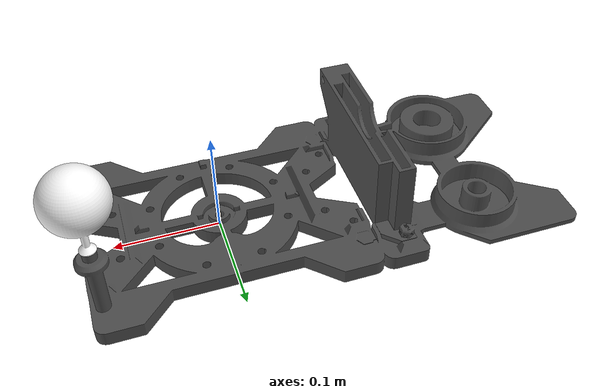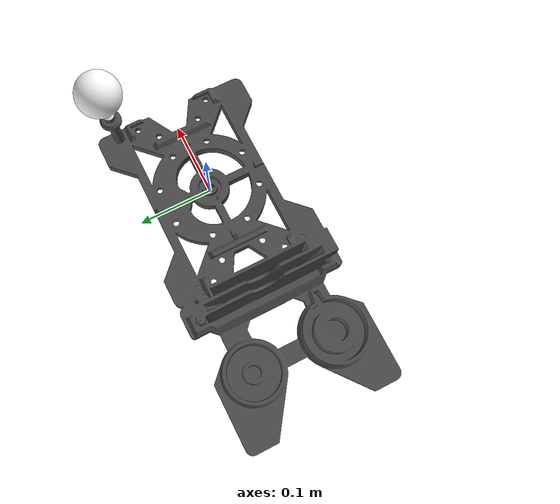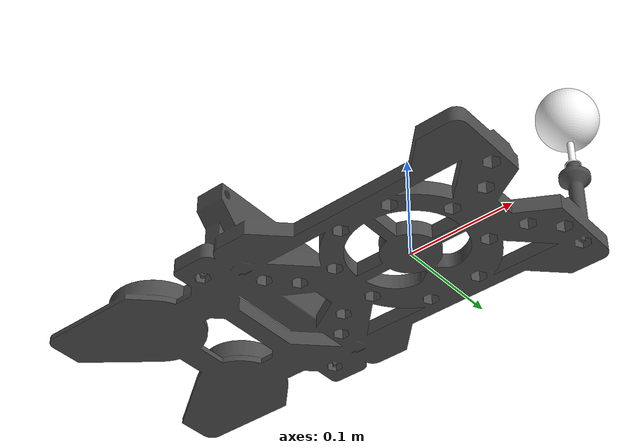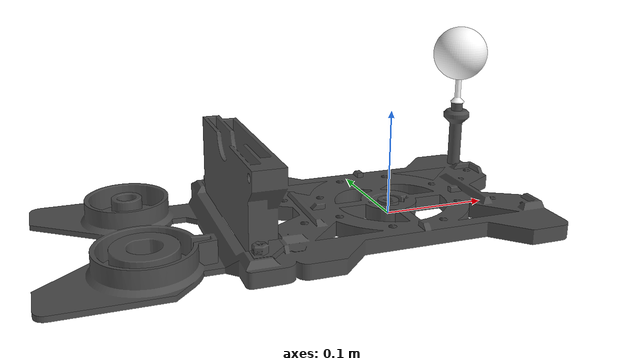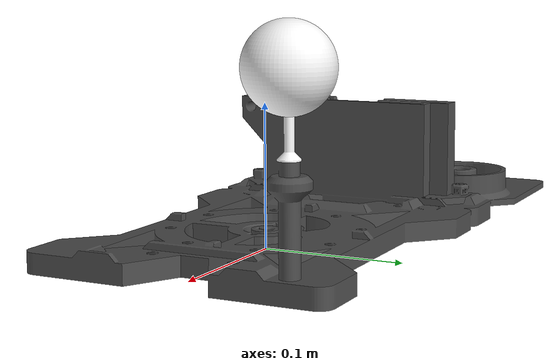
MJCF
<mujoco model="G2_Sphere">

  <asset>
    <material name="object_material" rgba="1 1 1 1" shininess="0.3"/>

    <mesh name="g9101112_base_plate_visual" file="g9101112_base_plate_visual.stl" scale="1 1 1"/>
    <mesh name="g_plate_collision_part1" file="g_plate_collision_part1.stl" scale="1 1 1"/>
    <mesh name="g_plate_collision_part2" file="g_plate_collision_part2.stl" scale="1 1 1"/>
    <mesh name="g_plate_collision_part3" file="g_plate_collision_part3.stl" scale="1 1 1"/>
    <mesh name="g910_pick_holder_collision_part0" file="g910_pick_holder_collision/part_0.obj" scale="1 1 1"/>
    <mesh name="g910_pick_holder_collision_part1" file="g910_pick_holder_collision/part_1.obj" scale="1 1 1"/>
    <mesh name="g910_pick_holder_collision_part2" file="g910_pick_holder_collision/part_2.obj" scale="1 1 1"/>
    <mesh name="g910_pick_holder_collision_part3" file="g910_pick_holder_collision/part_3.obj" scale="1 1 1"/>
    <mesh name="g910_pick_holder_collision_part4" file="g910_pick_holder_collision/part_4.obj" scale="1 1 1"/>
    <mesh name="g910_pick_holder_collision_part5" file="g910_pick_holder_collision/part_5.obj" scale="1 1 1"/>
    <mesh name="g910_pick_holder_collision_part6" file="g910_pick_holder_collision/part_6.obj" scale="1 1 1"/>
    <mesh name="g910_pick_holder_collision_part7" file="g910_pick_holder_collision/part_7.obj" scale="1 1 1"/>
    <mesh name="g910_pick_holder_collision_part8" file="g910_pick_holder_collision/part_8.obj" scale="1 1 1"/>
    <mesh name="g910_pick_holder_collision_part9" file="g910_pick_holder_collision/part_9.obj" scale="1 1 1"/>
    <mesh name="g910_pick_holder_collision_part10" file="g910_pick_holder_collision/part_10.obj" scale="1 1 1"/>
    <mesh name="g910_pick_holder_collision_part11" file="g910_pick_holder_collision/part_11.obj" scale="1 1 1"/>
    <mesh name="g910_pick_holder_collision_part12" file="g910_pick_holder_collision/part_12.obj" scale="1 1 1"/>
    <mesh name="g910_pick_holder_collision_part13" file="g910_pick_holder_collision/part_13.obj" scale="1 1 1"/>
    <mesh name="g910_pick_holder_collision_part14" file="g910_pick_holder_collision/part_14.obj" scale="1 1 1"/>
    <mesh name="g910_pick_holder_collision_part15" file="g910_pick_holder_collision/part_15.obj" scale="1 1 1"/>
    <mesh name="g910_pick_holder_collision_part16" file="g910_pick_holder_collision/part_16.obj" scale="1 1 1"/>
    <mesh name="g910_pick_holder_collision_part17" file="g910_pick_holder_collision/part_17.obj" scale="1 1 1"/>
    <mesh name="g910_pick_holder_collision_part18" file="g910_pick_holder_collision/part_18.obj" scale="1 1 1"/>
    <mesh name="g910_pick_holder_collision_part19" file="g910_pick_holder_collision/part_19.obj" scale="1 1 1"/>
    <mesh name="g910_pick_holder_collision_part20" file="g910_pick_holder_collision/part_20.obj" scale="1 1 1"/>
    <mesh name="g910_pick_holder_collision_part21" file="g910_pick_holder_collision/part_21.obj" scale="1 1 1"/>
    <mesh name="g910_bracket_collision_part0" file="g910_bracket_collision/part_0.obj" scale="1 1 1"/>
    <mesh name="g910_bracket_collision_part1" file="g910_bracket_collision/part_1.obj" scale="1 1 1"/>
    <mesh name="g910_bracket_collision_part2" file="g910_bracket_collision/part_2.obj" scale="1 1 1"/>
    <mesh name="g910_bracket_collision_part3" file="g910_bracket_collision/part_3.obj" scale="1 1 1"/>
    <mesh name="g910_bracket_collision_part4" file="g910_bracket_collision/part_4.obj" scale="1 1 1"/>
    <mesh name="g910_bracket_collision_part5" file="g910_bracket_collision/part_5.obj" scale="1 1 1"/>
    <mesh name="g910_bracket_collision_part6" file="g910_bracket_collision/part_6.obj" scale="1 1 1"/>
    <mesh name="g910_bracket_collision_part7" file="g910_bracket_collision/part_7.obj" scale="1 1 1"/>
    <mesh name="g910_bracket_collision_part8" file="g910_bracket_collision/part_8.obj" scale="1 1 1"/>
    <mesh name="g910_bracket_collision_part9" file="g910_bracket_collision/part_9.obj" scale="1 1 1"/>
    <mesh name="g910_bracket_collision_part10" file="g910_bracket_collision/part_10.obj" scale="1 1 1"/>
    <mesh name="g910_bracket_collision_part11" file="g910_bracket_collision/part_11.obj" scale="1 1 1"/>
    <mesh name="g910_bracket_collision_part12" file="g910_bracket_collision/part_12.obj" scale="1 1 1"/>
    <mesh name="g910_bracket_collision_part13" file="g910_bracket_collision/part_13.obj" scale="1 1 1"/>
    <mesh name="g910_bracket_collision_part14" file="g910_bracket_collision/part_14.obj" scale="1 1 1"/>
    <mesh name="g910_bracket_collision_part15" file="g910_bracket_collision/part_15.obj" scale="1 1 1"/>
    <mesh name="g910_bracket_collision_part16" file="g910_bracket_collision/part_16.obj" scale="1 1 1"/>
    <mesh name="g910_bracket_collision_part17" file="g910_bracket_collision/part_17.obj" scale="1 1 1"/>
    <mesh name="g910_bracket_collision_part18" file="g910_bracket_collision/part_18.obj" scale="1 1 1"/>
    <mesh name="g910_bracket_collision_part19" file="g910_bracket_collision/part_19.obj" scale="1 1 1"/>
    <mesh name="g910_bracket_collision_part20" file="g910_bracket_collision/part_20.obj" scale="1 1 1"/>
    <mesh name="g910_bracket_collision_part21" file="g910_bracket_collision/part_21.obj" scale="1 1 1"/>
    <mesh name="g910_bracket_collision_part22" file="g910_bracket_collision/part_22.obj" scale="1 1 1"/>
    <mesh name="g910_bracket_collision_part23" file="g910_bracket_collision/part_23.obj" scale="1 1 1"/>
    <mesh name="g910_bracket_collision_part24" file="g910_bracket_collision/part_24.obj" scale="1 1 1"/>
    <mesh name="g910_bracket_collision_part25" file="g910_bracket_collision/part_25.obj" scale="1 1 1"/>
    <mesh name="g910_bracket_collision_part26" file="g910_bracket_collision/part_26.obj" scale="1 1 1"/>
    <mesh name="g910_bracket_collision_part27" file="g910_bracket_collision/part_27.obj" scale="1 1 1"/>
    <mesh name="g910_bracket_collision_part28" file="g910_bracket_collision/part_28.obj" scale="1 1 1"/>
    <mesh name="g910_bracket_collision_part29" file="g910_bracket_collision/part_29.obj" scale="1 1 1"/>
    <mesh name="g910_bracket_collision_part30" file="g910_bracket_collision/part_30.obj" scale="1 1 1"/>
    <mesh name="g910_bracket_collision_part31" file="g910_bracket_collision/part_31.obj" scale="1 1 1"/>
    <mesh name="g910_bracket_collision_part32" file="g910_bracket_collision/part_32.obj" scale="1 1 1"/>
    <mesh name="g910_bracket_collision_part33" file="g910_bracket_collision/part_33.obj" scale="1 1 1"/>
    <mesh name="g910_bracket_collision_part34" file="g910_bracket_collision/part_34.obj" scale="1 1 1"/>
    <mesh name="g910_bracket_collision_part35" file="g910_bracket_collision/part_35.obj" scale="1 1 1"/>
    <mesh name="g910_bracket_collision_part36" file="g910_bracket_collision/part_36.obj" scale="1 1 1"/>
    <mesh name="g910_bracket_collision_part37" file="g910_bracket_collision/part_37.obj" scale="1 1 1"/>
    <mesh name="g910_bracket_collision_part38" file="g910_bracket_collision/part_38.obj" scale="1 1 1"/>
    <mesh name="g910_bracket_collision_part39" file="g910_bracket_collision/part_39.obj" scale="1 1 1"/>
    <mesh name="g910_bracket_collision_part40" file="g910_bracket_collision/part_40.obj" scale="1 1 1"/>

    <mesh name="g10_sphere_visual" file="g10_sphere_visual.stl" scale="1 1 1"/>
    <mesh name="g10_sphere_collision_part1" file="g10_sphere_collision_part1.stl" scale="1 1 1"/>
    <mesh name="g910_interface_collision_part1" file="g910_interface_collision_part1.stl" scale="1 1 1"/>
    <mesh name="g910_interface_collision_part2" file="g910_interface_collision_part2.stl" scale="1 1 1"/>
  </asset>

  <default>
    <default class="visual">
      <geom contype="0" conaffinity="0" group="2"/>
    </default>
    <default class="collision">
      <geom group="3" solimp="0.5 0.99 0.0001" solref="0.005 1"/>
    </default>
  </default>

  <worldbody>
    <body name="base_plate" pos="0 0 0">
      <geom name="g9101112_base_plate_visual" type="mesh" mesh="g9101112_base_plate_visual" rgba="0.3 0.3 0.3 1" mass="0" class="visual"/>
      <geom name="g_plate_collision_part1" type="mesh" mesh="g_plate_collision_part1" class="collision" density="248"/>
      <geom name="g_plate_collision_part2" type="mesh" mesh="g_plate_collision_part2" class="collision" density="248"/>
      <geom size="0.1265 0.1063 0.007"  pos="0 0 0.007" type="box" density="248" class="collision"/>

      <geom name="g910_pick_holder_collision_part0" type="mesh" mesh="g910_pick_holder_collision_part0" class="collision" density="248"/>
      <geom name="g910_pick_holder_collision_part1" type="mesh" mesh="g910_pick_holder_collision_part1" class="collision" density="248"/>
      <geom name="g910_pick_holder_collision_part2" type="mesh" mesh="g910_pick_holder_collision_part2" class="collision" density="248"/>
      <geom name="g910_pick_holder_collision_part3" type="mesh" mesh="g910_pick_holder_collision_part3" class="collision" density="248"/>
      <geom name="g910_pick_holder_collision_part4" type="mesh" mesh="g910_pick_holder_collision_part4" class="collision" density="248"/>
      <geom name="g910_pick_holder_collision_part5" type="mesh" mesh="g910_pick_holder_collision_part5" class="collision" density="248"/>
      <geom name="g910_pick_holder_collision_part6" type="mesh" mesh="g910_pick_holder_collision_part6" class="collision" density="248"/>
      <geom name="g910_pick_holder_collision_part7" type="mesh" mesh="g910_pick_holder_collision_part7" class="collision" density="248"/>
      <geom name="g910_pick_holder_collision_part8" type="mesh" mesh="g910_pick_holder_collision_part8" class="collision" density="248"/>
      <geom name="g910_pick_holder_collision_part9" type="mesh" mesh="g910_pick_holder_collision_part9" class="collision" density="248"/>
      <geom name="g910_pick_holder_collision_part10" type="mesh" mesh="g910_pick_holder_collision_part10" class="collision" density="248"/>
      <geom name="g910_pick_holder_collision_part11" type="mesh" mesh="g910_pick_holder_collision_part11" class="collision" density="248"/>
      <geom name="g910_pick_holder_collision_part12" type="mesh" mesh="g910_pick_holder_collision_part12" class="collision" density="248"/>
      <geom name="g910_pick_holder_collision_part13" type="mesh" mesh="g910_pick_holder_collision_part13" class="collision" density="248"/>
      <geom name="g910_pick_holder_collision_part14" type="mesh" mesh="g910_pick_holder_collision_part14" class="collision" density="248"/>
      <geom name="g910_pick_holder_collision_part15" type="mesh" mesh="g910_pick_holder_collision_part15" class="collision" density="248"/>
      <geom name="g910_pick_holder_collision_part16" type="mesh" mesh="g910_pick_holder_collision_part16" class="collision" density="248"/>
      <geom name="g910_pick_holder_collision_part17" type="mesh" mesh="g910_pick_holder_collision_part17" class="collision" density="248"/>
      <geom name="g910_pick_holder_collision_part18" type="mesh" mesh="g910_pick_holder_collision_part18" class="collision" density="248"/>
      <geom name="g910_pick_holder_collision_part19" type="mesh" mesh="g910_pick_holder_collision_part19" class="collision" density="248"/>
      <geom name="g910_pick_holder_collision_part20" type="mesh" mesh="g910_pick_holder_collision_part20" class="collision" density="248"/>
      <geom name="g910_pick_holder_collision_part21" type="mesh" mesh="g910_pick_holder_collision_part21" class="collision" density="248"/>

      <geom name="g910_bracket_collision_part0" type="mesh" mesh="g910_bracket_collision_part0" class="collision" density="248"/>
      <geom name="g910_bracket_collision_part1" type="mesh" mesh="g910_bracket_collision_part1" class="collision" density="248"/>
      <geom name="g910_bracket_collision_part2" type="mesh" mesh="g910_bracket_collision_part2" class="collision" density="248"/>
      <geom name="g910_bracket_collision_part3" type="mesh" mesh="g910_bracket_collision_part3" class="collision" density="248"/>
      <geom name="g910_bracket_collision_part4" type="mesh" mesh="g910_bracket_collision_part4" class="collision" density="248"/>
      <geom name="g910_bracket_collision_part5" type="mesh" mesh="g910_bracket_collision_part5" class="collision" density="248"/>
      <geom name="g910_bracket_collision_part6" type="mesh" mesh="g910_bracket_collision_part6" class="collision" density="248"/>
      <geom name="g910_bracket_collision_part7" type="mesh" mesh="g910_bracket_collision_part7" class="collision" density="248"/>
      <geom name="g910_bracket_collision_part8" type="mesh" mesh="g910_bracket_collision_part8" class="collision" density="248"/>
      <geom name="g910_bracket_collision_part9" type="mesh" mesh="g910_bracket_collision_part9" class="collision" density="248"/>
      <geom name="g910_bracket_collision_part10" type="mesh" mesh="g910_bracket_collision_part10" class="collision" density="248"/>
      <geom name="g910_bracket_collision_part11" type="mesh" mesh="g910_bracket_collision_part11" class="collision" density="248"/>
      <geom name="g910_bracket_collision_part12" type="mesh" mesh="g910_bracket_collision_part12" class="collision" density="248"/>
      <geom name="g910_bracket_collision_part13" type="mesh" mesh="g910_bracket_collision_part13" class="collision" density="248"/>
      <geom name="g910_bracket_collision_part14" type="mesh" mesh="g910_bracket_collision_part14" class="collision" density="248"/>
      <geom name="g910_bracket_collision_part15" type="mesh" mesh="g910_bracket_collision_part15" class="collision" density="248"/>
      <geom name="g910_bracket_collision_part16" type="mesh" mesh="g910_bracket_collision_part16" class="collision" density="248"/>
      <geom name="g910_bracket_collision_part17" type="mesh" mesh="g910_bracket_collision_part17" class="collision" density="248"/>
      <geom name="g910_bracket_collision_part18" type="mesh" mesh="g910_bracket_collision_part18" class="collision" density="248"/>
      <geom name="g910_bracket_collision_part19" type="mesh" mesh="g910_bracket_collision_part19" class="collision" density="248"/>
      <geom name="g910_bracket_collision_part20" type="mesh" mesh="g910_bracket_collision_part20" class="collision" density="248"/>
      <geom name="g910_bracket_collision_part21" type="mesh" mesh="g910_bracket_collision_part21" class="collision" density="248"/>
      <geom name="g910_bracket_collision_part22" type="mesh" mesh="g910_bracket_collision_part22" class="collision" density="248"/>
      <geom name="g910_bracket_collision_part23" type="mesh" mesh="g910_bracket_collision_part23" class="collision" density="248"/>
      <geom name="g910_bracket_collision_part24" type="mesh" mesh="g910_bracket_collision_part24" class="collision" density="248"/>
      <geom name="g910_bracket_collision_part25" type="mesh" mesh="g910_bracket_collision_part25" class="collision" density="248"/>
      <geom name="g910_bracket_collision_part26" type="mesh" mesh="g910_bracket_collision_part26" class="collision" density="248"/>
      <geom name="g910_bracket_collision_part27" type="mesh" mesh="g910_bracket_collision_part27" class="collision" density="248"/>
      <geom name="g910_bracket_collision_part28" type="mesh" mesh="g910_bracket_collision_part28" class="collision" density="248"/>
      <geom name="g910_bracket_collision_part29" type="mesh" mesh="g910_bracket_collision_part29" class="collision" density="248"/>
      <geom name="g910_bracket_collision_part30" type="mesh" mesh="g910_bracket_collision_part30" class="collision" density="248"/>
      <geom name="g910_bracket_collision_part31" type="mesh" mesh="g910_bracket_collision_part31" class="collision" density="248"/>
      <geom name="g910_bracket_collision_part32" type="mesh" mesh="g910_bracket_collision_part32" class="collision" density="248"/>
      <geom name="g910_bracket_collision_part33" type="mesh" mesh="g910_bracket_collision_part33" class="collision" density="248"/>
      <geom name="g910_bracket_collision_part34" type="mesh" mesh="g910_bracket_collision_part34" class="collision" density="248"/>
      <geom name="g910_bracket_collision_part35" type="mesh" mesh="g910_bracket_collision_part35" class="collision" density="248"/>
      <geom name="g910_bracket_collision_part36" type="mesh" mesh="g910_bracket_collision_part36" class="collision" density="248"/>
      <geom name="g910_bracket_collision_part37" type="mesh" mesh="g910_bracket_collision_part37" class="collision" density="248"/>
      <geom name="g910_bracket_collision_part38" type="mesh" mesh="g910_bracket_collision_part38" class="collision" density="248"/>
      <geom name="g910_bracket_collision_part39" type="mesh" mesh="g910_bracket_collision_part39" class="collision" density="248"/>
      <geom name="g910_bracket_collision_part40" type="mesh" mesh="g910_bracket_collision_part40" class="collision" density="248"/>
    </body>

    <body name="g10_sphere" pos="0 0 0">
      <joint name="g10_free_joint" type="free"/>
      <geom name="g10_sphere_visual" type="mesh" mesh="g10_sphere_visual" material="object_material" mass="0" class="visual"/>
      <geom name="g10_sphere_collision_part1" type="mesh" mesh="g10_sphere_collision_part1" class="collision" density="248" friction="0.8 0.1 0.01"/>
      <geom name="g910_interface_collision_part1" type="mesh" mesh="g910_interface_collision_part1" class="collision" density="248"/>
      <geom name="g910_interface_collision_part2" type="mesh" mesh="g910_interface_collision_part2" class="collision" density="248"/>
    </body>

  </worldbody>
</mujoco>
